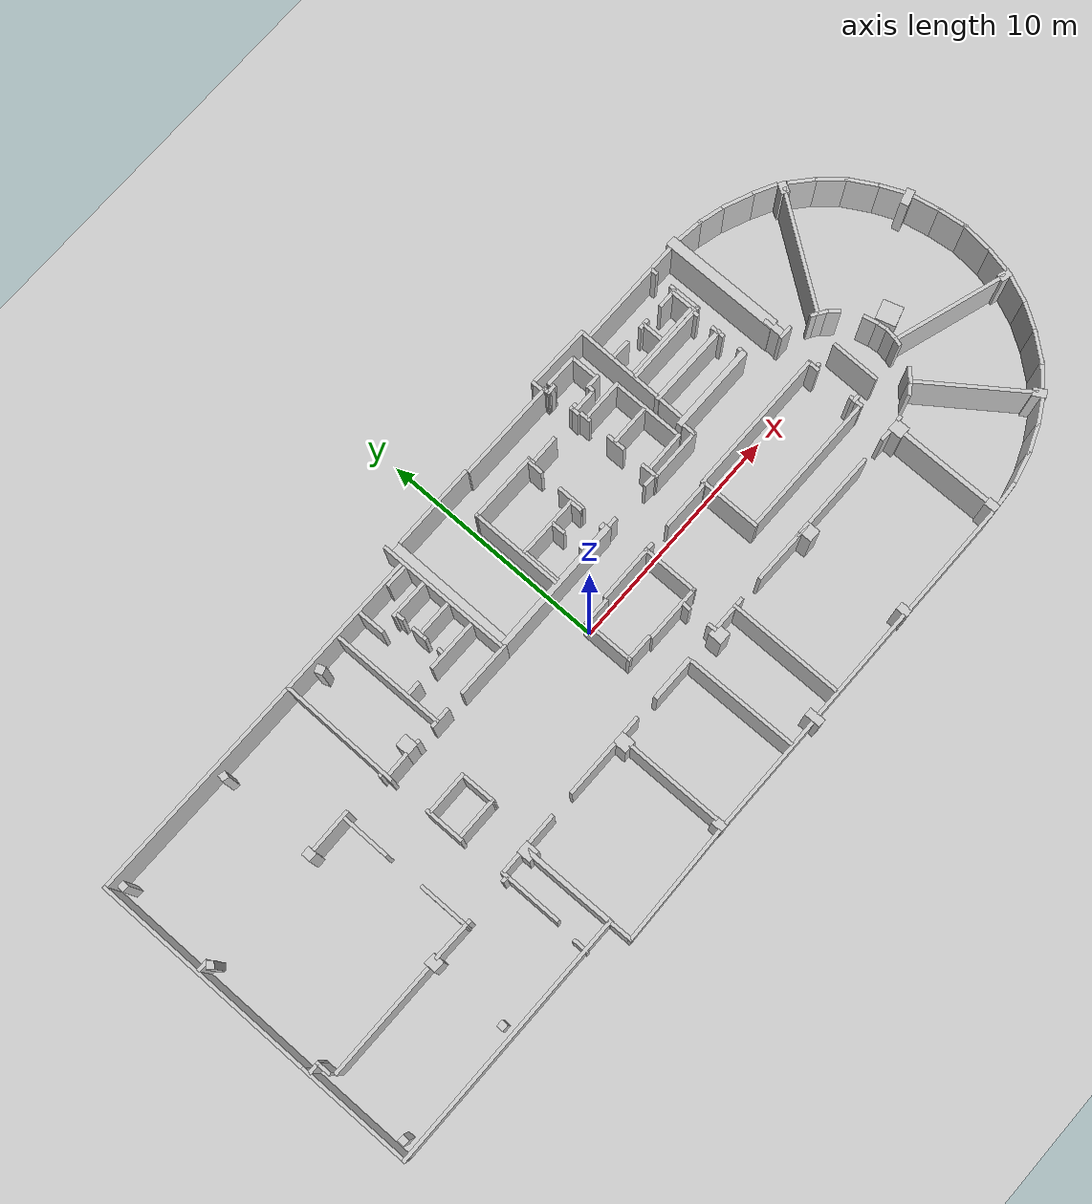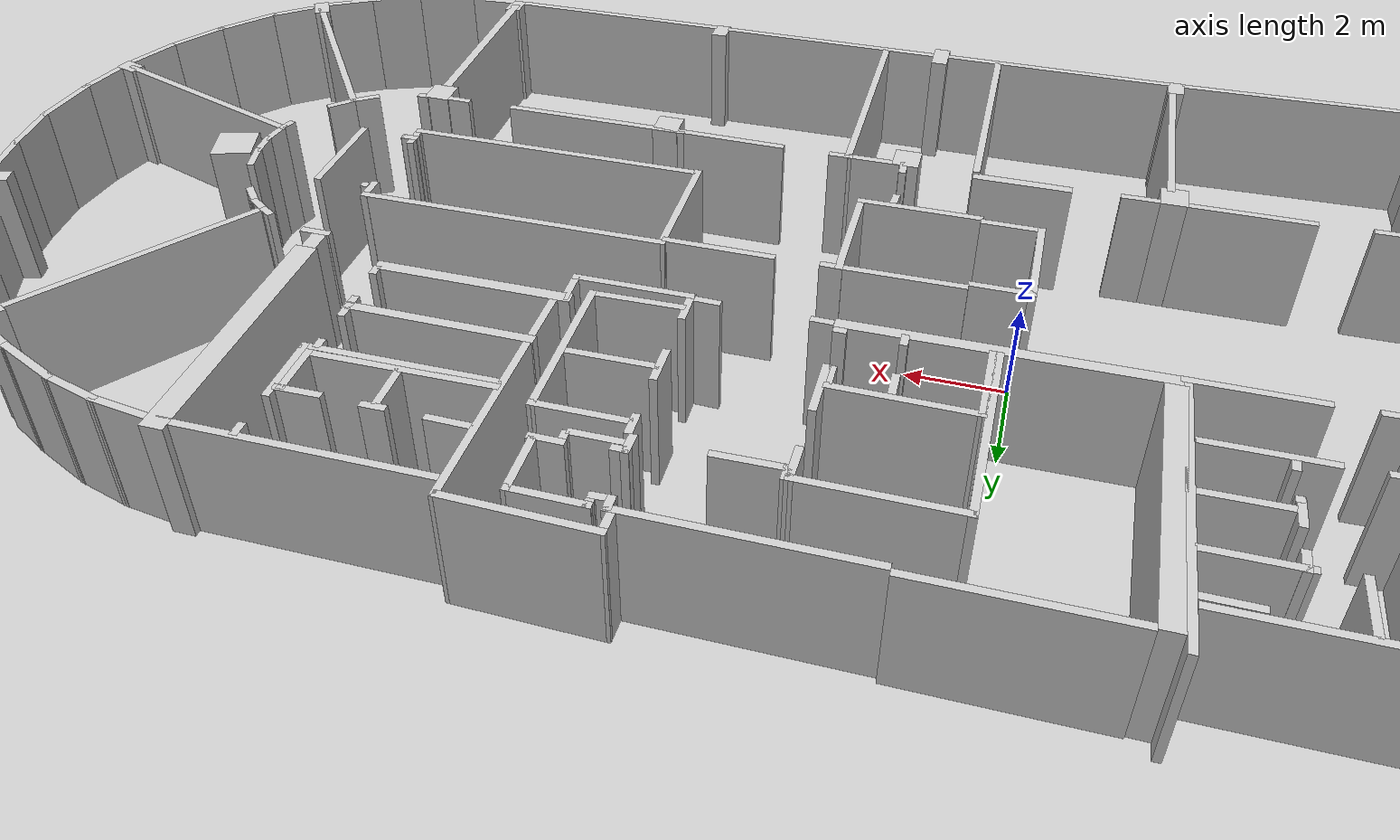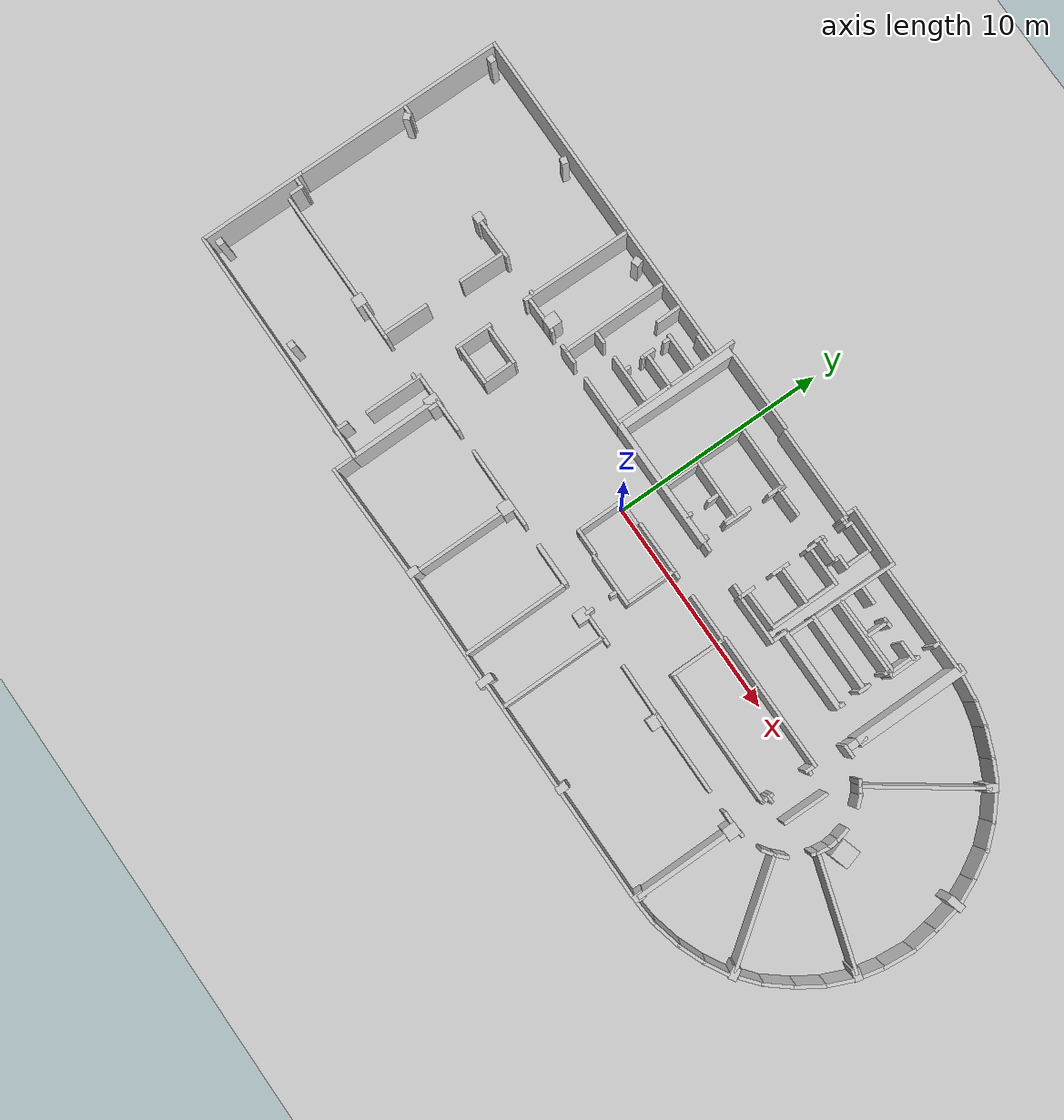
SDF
<?xml version="1.0" ?>

<sdf version="1.8">
  <world name="6OG">

    <gravity>0 0 -9.81</gravity>

    <light name="sun" type="directional">
      <cast_shadows>true</cast_shadows>
      <pose>0 0 10 0 0 0</pose>
      <diffuse>0.8 0.8 0.8 1</diffuse>
      <specular>0.2 0.2 0.2 1</specular>
      <attenuation>
        <range>1000</range>
        <constant>0.9</constant>
        <linear>0.01</linear>
        <quadratic>0.001</quadratic>
      </attenuation>
      <direction>-0.5 0.1 -0.9</direction>
    </light>

    <model name="ground_plane">
      <static>true</static>
      <link name="link">
        <collision name="collision">
          <geometry>
            <plane>
              <normal>0 0 1</normal>
              <size>1900 200</size>
            </plane>
          </geometry>
        </collision>
        <visual name="visual">
          <geometry>
            <plane>
              <normal>0 0 1</normal>
              <size>1900 200</size>
            </plane>
          </geometry>
          <material>
            <ambient>0.8 0.8 0.8 1</ambient>
            <diffuse>0.8 0.8 0.8 1</diffuse>
            <specular>0.8 0.8 0.8 1</specular>
          </material>
        </visual>
      </link>
    </model>

    <include>
      <uri>package://tiplu_world/models/6_OG_normal_doors</uri>
      <name>6_OG_normale_tueren</name>
    </include>

    <!-- TODO@Torben/Jacob: How do we pass a parameter into a sdf to distinguish between fortress and garden -->
  </world>
</sdf>
